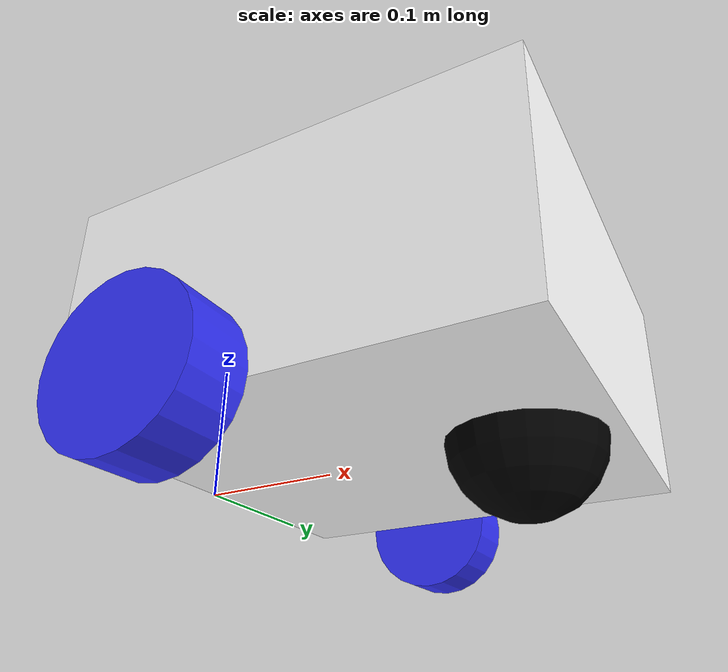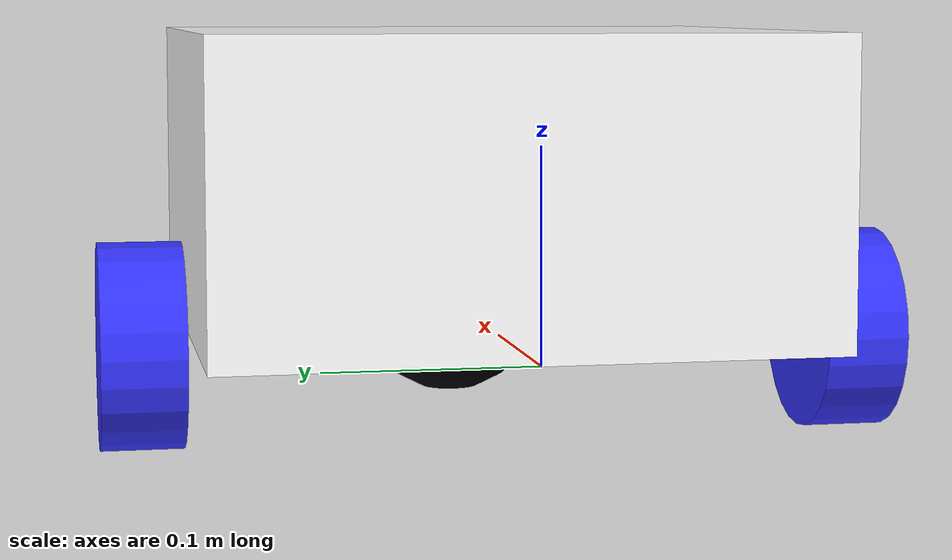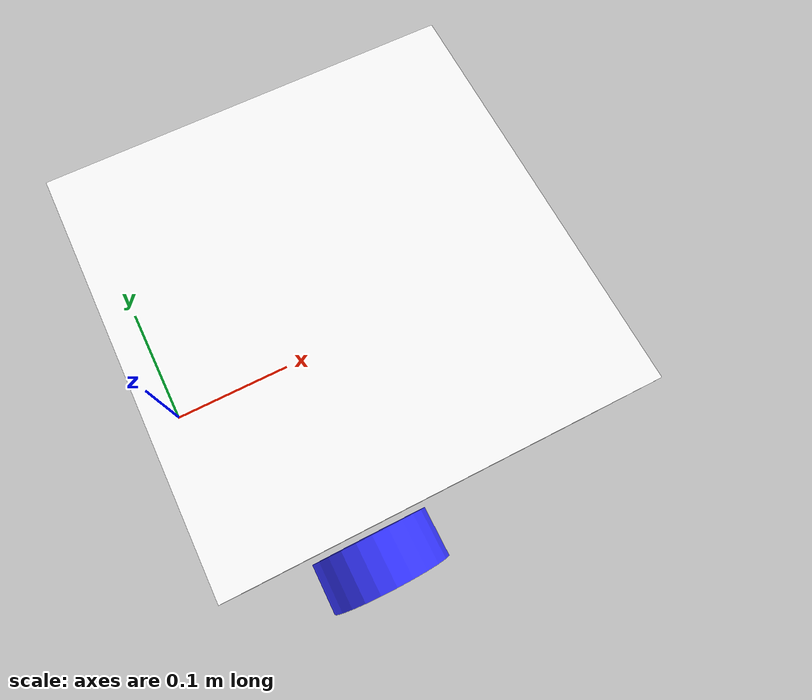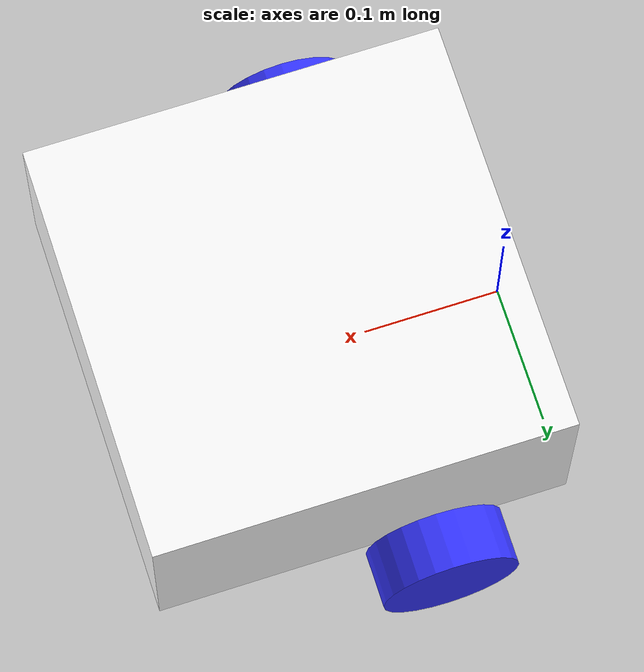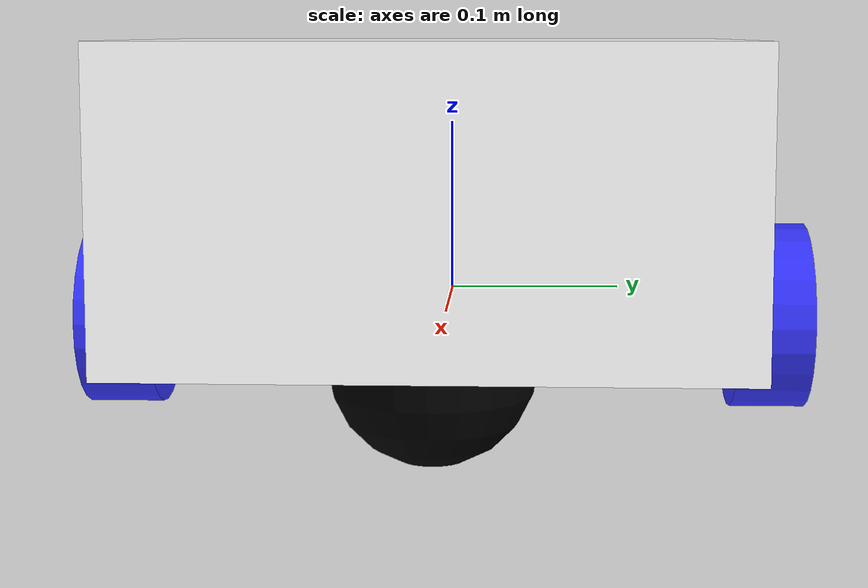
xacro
<?xml version="1.0"?>
<robot xmlns:xacro="http://www.ros.org/wiki/xacro">

    <xacro:include filename="inertial_macros.xacro"/>

    <material name = "white">
        <color rgba= "1 1 1 1"></color>
    </material>
    <material name = "orange">
        <color rgba= "1 0.3 0.1 1"></color>
    </material>
    <material name = "blue">
        <color rgba= "0.2 0.2 1 1"></color>
    </material>
    <material name = "black">
        <color rgba= "0 0 0 1"></color>
    </material>
    <material name = "red">
        <color rgba= "1 0 0 1"></color>
    </material>

    <link name="base_link">

    </link>

    <!-- CHASSIS-->
    <joint name="chassis_joint" type="fixed">
        <parent link="base_link"></parent>
        <child link="chassis"></child>
        <origin xyz="0.1 0 0"></origin>
    </joint>

    <link name="chassis">
        <visual>
            <origin xyz="0.05 0 0.075"></origin>
            <geometry>
                <box size="0.3 0.3 0.15"></box>
            </geometry>
            <material name="white"></material>
        </visual>
        <collision>
            <origin xyz="0.05 0 0.075"></origin>
            <geometry>
                <box size="0.3 0.3 0.15"></box>
            </geometry>
        </collision>
        <xacro:inertial_box mass="0.5" x="0.3" y="0.3" z="0.15">
            <origin xyz="0.05 0 0.075" rpy="0 0 0"/>
        </xacro:inertial_box>
    </link>
    <gazebo reference="chassis">
        <material>Gazebo/White</material>
    </gazebo>

    <!-- LEFT WHEEL LINK -->
    <joint name="left_wheel_joint" type="continuous">
        <parent link="base_link"></parent>
        <child link="left_wheel"></child>
        <origin xyz="0.1 0.175 0" rpy="-${pi/2} 0 0"></origin>
        <axis xyz="0 0 1"></axis>
    </joint>

    <link name="left_wheel">
        <visual>
            <geometry>
                <cylinder radius="0.05" length="0.04"></cylinder>
            </geometry>
            <material name ="blue"></material>
        </visual>
        <collision>
            <geometry>
                <cylinder radius="0.05" length="0.04"></cylinder>
            </geometry>
        </collision>
        <xacro:inertial_cylinder mass="0.1" length="0.04" radius="0.05">
            <origin xyz="0.1 0 0" rpy="0 0 0"/>
        </xacro:inertial_cylinder>
    </link>
    <gazebo reference="left_wheel">
        <material>Gazebo/Blue</material>
    </gazebo>

    <!-- RIGHT WHEEL LINK -->
    <joint name="right_wheel_joint" type="continuous">
        <parent link="base_link"></parent>
        <child link="right_wheel"></child>
        <origin xyz="0.1 -0.175 0" rpy="${pi/2} 0 0"></origin>
        <axis xyz="0 0 -1"></axis>
    </joint>

    <link name="right_wheel">
        <visual>
            <geometry>
                <cylinder radius="0.05" length="0.04"></cylinder>
            </geometry>
            <material name ="blue"></material>
        </visual>
        <collision>
            <geometry>
                <cylinder radius="0.05" length="0.04"></cylinder>
            </geometry>
        </collision>
        <xacro:inertial_cylinder mass="0.1" length="0.04" radius="0.05">
            <origin xyz="0.1 0 0" rpy="0 0 0"/>
        </xacro:inertial_cylinder>
    </link>
    <gazebo reference="right_wheel">
        <material>Gazebo/Blue</material>
    </gazebo>

    <!-- CASTER WHEEL -->
    <joint name="caster_wheel_joint" type="fixed">
        <parent link="base_link"></parent>
        <child link="caster_wheel"></child>
        <origin xyz="0.24 0 0"></origin>
    </joint>

    <link name="caster_wheel">
        <visual>
            <geometry>
                <sphere radius="0.05"></sphere>
            </geometry>
            <material name ="black"></material>
        </visual>
        <collision>
            <geometry>
                <sphere radius="0.05"></sphere>
            </geometry>
        </collision>
        <xacro:inertial_sphere mass="0.1" radius="0.05">
            <origin xyz="0 0 0" rpy="0 0 0"/>
        </xacro:inertial_sphere>
    </link>
    <gazebo reference="caster_wheel">
        <material>Gazebo/Black</material>
        <mu1 value="0.001"></mu1>
        <mu2 value="0.001"></mu2>
    </gazebo>

</robot>

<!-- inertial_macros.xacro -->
<robot xmlns:xacro="http://www.ros.org/wiki/xacro" >

    <!-- Specify some standard inertial calculations -->
    <xacro:macro name="inertial_sphere" params="mass radius *origin">
        <inertial>
            <xacro:insert_block name="origin"/>
            <mass value="${mass}" />
            <inertia ixx="${(2/5) * mass * (radius*radius)}" ixy="0.0" ixz="0.0"
                    iyy="${(2/5) * mass * (radius*radius)}" iyz="0.0"
                    izz="${(2/5) * mass * (radius*radius)}" />
        </inertial>
    </xacro:macro>

    <xacro:macro name="inertial_box" params="mass x y z *origin">
        <inertial>
            <xacro:insert_block name="origin"/>
            <mass value="${mass}" />
            <inertia ixx="${(1/12) * mass * (y*y+z*z)}" ixy="0.0" ixz="0.0"
                    iyy="${(1/12) * mass * (x*x+z*z)}" iyz="0.0"
                    izz="${(1/12) * mass * (x*x+y*y)}" />
        </inertial>
    </xacro:macro>

    <xacro:macro name="inertial_cylinder" params="mass length radius *origin">
        <inertial>
            <xacro:insert_block name="origin"/>
            <mass value="${mass}" />
            <inertia ixx="${(1/12) * mass * (3*radius*radius + length*length)}" ixy="0.0" ixz="0.0"
                    iyy="${(1/12) * mass * (3*radius*radius + length*length)}" iyz="0.0"
                    izz="${(1/2) * mass * (radius*radius)}" />
        </inertial>
    </xacro:macro>

</robot>
